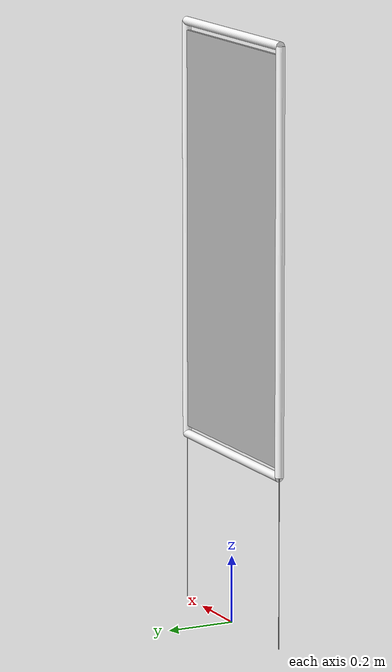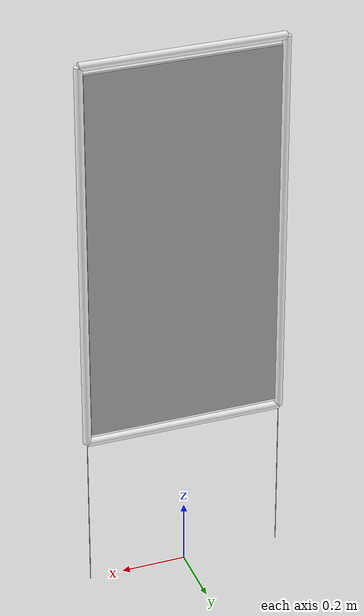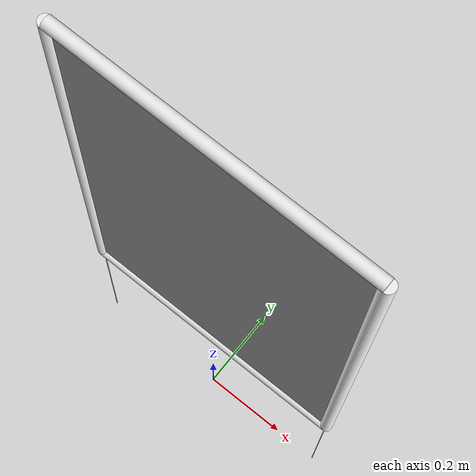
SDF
<?xml version="1.0"?>
<sdf version="1.11">  <model name="robosub_buoy_badge">
    <static>1</static>

    <include>
      <uri>model://robosub_buoy</uri>
    </include>

    <link name="box_badge">
      <pose>0 0 1.1096 0 0 0</pose>
      <visual name="box_badge_vis">
        <geometry>
          <box>
            <size>0.5842 0.01 1.1684</size>
          </box>
        </geometry>
        <material>
          <script>
            <uri>file://materials/scripts/badge.material</uri>
            <name>TexturedShape/badge</name>
          </script>
        </material>
      </visual>
      <collision name="box_badge_collide">
        <geometry>
          <box>
            <size>0.5842 0.01 1.1684</size>
          </box>
        </geometry>
      </collision>
    </link>
  </model>
</sdf>

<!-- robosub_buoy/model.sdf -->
<sdf version="1.11">  <model name="robosub_buoy">
    <static>1</static>

    <link name="buoy_top">
      <pose>0 0 1.7192 0 1.5707 0</pose>
      <visual name="buoy_top_vis">
        <geometry>
          <cylinder>
            <radius>0.0127</radius>
            <length>0.6096</length>
          </cylinder>
        </geometry>
        <material>
          <ambient>1 1 1 1</ambient>
          <diffuse>1 1 1 1</diffuse>
          <specular>0.1 0.1 0.1 1</specular>
        </material>
      </visual>
      <collision name="buoy_top_collide">
        <geometry>
          <cylinder>
            <radius>0.0127</radius>
            <length>0.6096</length>
          </cylinder>
        </geometry>
      </collision>
    </link>

    <link name="buoy_bottom">
      <pose>0 0 0.5 0 1.5707 0</pose>
      <visual name="buoy_bottom_vis">
        <geometry>
          <cylinder>
            <radius>0.0127</radius>
            <length>0.6096</length>
          </cylinder>
        </geometry>
        <material>
          <ambient>1 1 1 1</ambient>
          <diffuse>1 1 1 1</diffuse>
          <specular>0.1 0.1 0.1 1</specular>
        </material>
      </visual>
      <collision name="buoy_bottom_collide">
        <geometry>
          <cylinder>
            <radius>0.0127</radius>
            <length>0.6096</length>
          </cylinder>
        </geometry>
      </collision>
    </link>

    <link name="buoy_side_left">
      <pose>-0.3048 0 1.1096 0 0 0</pose>
      <visual name="buoy_side_left_vis">
        <geometry>
          <cylinder>
            <radius>0.0127</radius>
            <length>1.2192</length>
          </cylinder>
        </geometry>
        <material>
          <ambient>1 1 1 1</ambient>
          <diffuse>1 1 1 1</diffuse>
          <specular>0.1 0.1 0.1 1</specular>
        </material>
      </visual>
      <collision name="buoy_side_left_collide">
        <geometry>
          <cylinder>
            <radius>0.0127</radius>
            <length>1.2192</length>
          </cylinder>
        </geometry>
      </collision>
    </link>

    <link name="buoy_side_right">
      <pose>0.3048 0 1.1096 0 0 0</pose>
      <visual name="buoy_side_right_vis">
        <geometry>
          <cylinder>
            <radius>0.0127</radius>
            <length>1.2192</length>
          </cylinder>
        </geometry>
        <material>
          <ambient>1 1 1 1</ambient>
          <diffuse>1 1 1 1</diffuse>
          <specular>0.1 0.1 0.1 1</specular>
        </material>
      </visual>
      <collision name="buoy_side_right_collide">
        <geometry>
          <cylinder>
            <radius>0.0127</radius>
            <length>1.2192</length>
          </cylinder>
        </geometry>
      </collision>
    </link>

    <link name="buoy_mooring_left">
      <pose>-0.3048 0 0.25 0 0 0</pose>
      <visual name="buoy_mooring_left_vis">
        <geometry>
          <cylinder>
            <radius>0.001</radius>
            <length>0.5</length>
          </cylinder>
        </geometry>
        <material>
          <ambient>0 0 0 1</ambient>
          <diffuse>0 0 0 1</diffuse>
          <specular>0.1 0.1 0.1 1</specular>
        </material>
      </visual>
    </link>

    <link name="buoy_mooring_right">
      <pose>0.3048 0 0.25 0 0 0</pose>
      <visual name="buoy_mooring_right_vis">
        <geometry>
          <cylinder>
            <radius>0.001</radius>
            <length>0.5</length>
          </cylinder>
        </geometry>
        <material>
          <ambient>0 0 0 1</ambient>
          <diffuse>0 0 0 1</diffuse>
          <specular>0.1 0.1 0.1 1</specular>
        </material>
      </visual>
    </link>
  </model>
</sdf>
